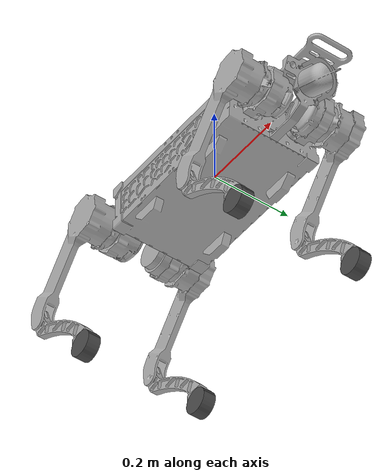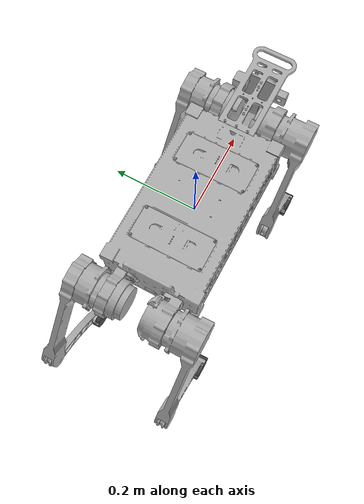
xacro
<?xml version="1.0" encoding="utf-8"?>
<robot name="ayg" xmlns:xacro="http://www.ros.org/wiki/xacro">

  <xacro:arg name="sim" default="False" />
  <xacro:property name="sim" default="$(arg sim)" />

  <xacro:arg name="sim_backend" default="gazebo" />
  <xacro:property name="sim_backend" value="$(arg sim_backend)" />

  <!-- The LiDAR's sensor frame (lidar_link) on the front head; the head itself
       is always present. -->
  <xacro:arg name="lidar" default="True" />
  <xacro:property name="lidar" default="$(arg lidar)" />

  <!-- Payload carried on Base, in kg. 0 is the bare robot; set it in
       simulation to test a policy under load. -->
  <xacro:arg name="payload_mass" default="0.0" />

  <xacro:arg name="initial_configuration" default="lying_down" />
  <xacro:property name="initial_configuration" value="$(arg initial_configuration)" />

  <xacro:arg name="use_csp" default="false" />

  <xacro:arg name="default_kp" default="40.0" />
  <xacro:arg name="default_kd" default="1.0" />

  <xacro:property name="effort_lim" value="50.0" />
  <xacro:property name="velocity_lim" value="10.0" />
  <xacro:property name="PI" value="3.1415926535897931" />

  <xacro:if value="${sim}">
    <xacro:include filename="$(find ayg_description)/urdf/sim_ros2_control.xacro" />
  </xacro:if>

  <xacro:unless value="${sim}">
    <xacro:include filename="$(find robstride_hardware)/urdf/robstride_ros2_control.xacro"/>
    <xacro:robstride_ros2_control
      lf_can_interface="can0"
      rf_can_interface="can1"
      lh_can_interface="can2"
      rh_can_interface="can3"
      actuator_type="3"
      default_kp="$(arg default_kp)"
      default_kd="$(arg default_kd)"
      use_csp="$(arg use_csp)"
      calibration_file="$(find robstride_hardware)/calibration/joint_calibration.yaml"
    />
  </xacro:unless>

  <!-- ============================ Base and IMU ============================ -->

  <xacro:property name="base_mass_cad"   value="11.02" />
  <xacro:property name="extra_base_mass" value="1.0" />
  <xacro:property name="payload_mass"    value="$(arg payload_mass)" />
  <xacro:property name="added_base_mass" value="${extra_base_mass + payload_mass}" />
  <xacro:property name="base_mass"       value="${base_mass_cad + added_base_mass}" />
  <xacro:property name="base_box_x"      value="0.423" />
  <xacro:property name="base_box_y"      value="0.239" />
  <xacro:property name="base_box_z"      value="0.150" />

  <link
    name="Base">
    <inertial>
      <origin
        xyz="-0.0005817 -1.9934E-05 -0.0020067"
        rpy="0 0 0" />
      <mass
        value="${base_mass}" />
      <inertia
        ixx="${round(0.035479 + added_base_mass * (base_box_y**2 + base_box_z**2) / 12, 6)}"
        ixy="-3.4801E-06"
        ixz="8.3812E-05"
        iyy="${round(0.032555 + added_base_mass * (base_box_x**2 + base_box_z**2) / 12, 6)}"
        iyz="0.00043953"
        izz="${round(0.055613 + added_base_mass * (base_box_x**2 + base_box_y**2) / 12, 6)}" />
    </inertial>
    <visual>
      <origin
        xyz="0 0 0"
        rpy="0 0 0" />
      <geometry>
        <mesh
          filename="package://ayg_description/meshes/Base.STL" />
      </geometry>
      <material
        name="">
        <color
          rgba="0.69804 0.69804 0.69804 1" />
      </material>
    </visual>
    <collision>
      <origin
        xyz="-0.001 0 -0.013"
        rpy="0 0 0" />
      <geometry>
        <box size="${base_box_x} ${base_box_y} ${base_box_z}" />
      </geometry>
    </collision>
  </link>

  <link
    name="IMU">
    <inertial>
      <origin
        xyz="-0.00099712 0.00015501 -0.00052021"
        rpy="0 0 0" />
      <mass
        value="0.0013495" />
      <inertia
        ixx="4.0133E-08"
        ixy="-6.9859E-14"
        ixz="8.9554E-12"
        iyy="5.9906E-08"
        iyz="-1.4567E-14"
        izz="9.917E-08" />
    </inertial>
  </link>

  <joint
    name="Base_2_IMU"
    type="fixed">
    <origin
      xyz="0 0 -0.02883"
      rpy="0 0 0" />
    <parent
      link="Base" />
    <child
      link="IMU" />
    <axis
      xyz="0 0 0" />
  </joint>

  <xacro:include filename="$(find ayg_description)/urdf/legs.xacro" />

  <xacro:include filename="$(find ayg_description)/urdf/lidar.xacro" />
</robot>

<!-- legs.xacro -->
<robot xmlns:xacro="http://www.ros.org/wiki/xacro">

  <xacro:macro name="ayg_leg" params="side FH sx sy">

    <!-- ============================== Hip ============================== -->
    <link name="${side}${FH}_Hip">
      <inertial>
        <origin xyz="${0.06215*sx} ${-0.0031317*sy} -0.00034351" rpy="0 0 0" />
        <mass value="1.0451" />
        <inertia ixx="0.00069698" ixy="${-1.5149E-06*sx*sy}" ixz="${1.4486E-05*sx}"
                 iyy="0.0012902"  iyz="${-1.5206E-06*sy}"    izz="0.00084229" />
      </inertial>
      <visual>
        <origin xyz="0 0 0" rpy="0 0 0" />
        <geometry>
          <mesh filename="package://ayg_description/meshes/${side}${FH}_Hip.STL" />
        </geometry>
        <material name="">
          <color rgba="0.69804 0.69804 0.69804 1" />
        </material>
      </visual>
      <collision>
        <origin xyz="${0.060*sx} ${0.0393*sy} -0.0045" rpy="${PI/2} 0 0" />
        <geometry>
          <cylinder radius="0.047" length="0.145" />
        </geometry>
      </collision>
    </link>

    <joint name="${side}${FH}_HAA" type="revolute">
      <origin xyz="${0.201*sx} ${0.056*sy} 0" rpy="0 0 0" />
      <parent link="Base" />
      <child link="${side}${FH}_Hip" />
      <axis xyz="1 0 0" />
      <xacro:if value="${side == 'L'}">
        <limit lower="-0.5236" upper="${0.5236 if FH == 'F' else 0.8203}"
               effort="${effort_lim}" velocity="${velocity_lim}" />
      </xacro:if>
      <xacro:unless value="${side == 'L'}">
        <limit lower="${-0.5236 if FH == 'F' else -0.8203}" upper="0.5236"
               effort="${effort_lim}" velocity="${velocity_lim}" />
      </xacro:unless>
    </joint>

    <!-- ============================= Thigh ============================= -->
    <link name="${side}${FH}_Thigh">
      <inertial>
        <origin xyz="-0.024065 ${0.049498*sy} -0.02468" rpy="0 0 0" />
        <mass value="1.6083" />
        <inertia ixx="0.004797"  ixy="${0.00038562*sy}" ixz="-0.0032535"
                 iyy="0.0083583" iyz="${0.00037881*sy}" izz="0.0043329" />
      </inertial>
      <visual>
        <origin xyz="0 0 0" rpy="0 0 0" />
        <geometry>
          <mesh filename="package://ayg_description/meshes/${side}_Thigh.STL" />
        </geometry>
        <material name="">
          <color rgba="0.69804 0.69804 0.69804 1" />
        </material>
      </visual>
      <collision>
        <origin xyz="-0.1121 ${0.0731*sy} -0.1091" rpy="0 -2.4776 0" />
        <geometry>
          <box size="0.052 0.016 0.170" />
        </geometry>
      </collision>
    </link>

    <joint name="${side}${FH}_HFE" type="revolute">
      <origin xyz="${0.065*sx} ${0.0215*sy} 0" rpy="0 0 0" />
      <parent link="${side}${FH}_Hip" />
      <child link="${side}${FH}_Thigh" />
      <axis xyz="0 -1 0" />
      <!-- Export limits negated and swapped for the -y axis:
           front  (-3.1948, 1.8667) -> (-1.8667, 3.1948)
           hind   (-2.4094, 2.6521) -> (-2.6521, 2.4094) -->
      <xacro:if value="${FH == 'F'}">
        <limit lower="-1.8667" upper="3.1948" effort="${effort_lim}" velocity="${velocity_lim}" />
      </xacro:if>
      <xacro:unless value="${FH == 'F'}">
        <limit lower="-2.6521" upper="2.4094" effort="${effort_lim}" velocity="${velocity_lim}" />
      </xacro:unless>
    </joint>

    <!-- ============================= Shank ============================= -->
    <link name="${side}${FH}_Shank">
      <inertial>
        <origin xyz="0.079065 ${0.015593*sy} -0.077092" rpy="0 0 0" />
        <mass value="0.28461" />
        <inertia ixx="0.0013467" ixy="3.9114E-12" ixz="0.0012546"
                 iyy="0.0026227" iyz="-1.247E-11" izz="0.0012937" />
      </inertial>
      <visual>
        <origin xyz="0 ${0.015582*(sy-1)} 0" rpy="0 0 0" />
        <geometry>
          <mesh filename="package://ayg_description/meshes/Shank.STL" />
        </geometry>
        <material name="">
          <color rgba="0.69804 0.69804 0.69804 1" />
        </material>
      </visual>
      <collision>
        <origin xyz="0.0897 ${0.015582*sy} -0.0938" rpy="0 2.4146 0" />
        <geometry>
          <box size="0.040 0.017 0.180" />
        </geometry>
      </collision>
      <collision>
        <origin xyz="0 ${0.015582*sy} 0" rpy="${PI/2} 0 0" />
        <geometry>
          <cylinder radius="0.030" length="0.019" />
        </geometry>
      </collision>
    </link>

    <joint name="${side}${FH}_KFE" type="revolute">
      <origin xyz="-0.15715 ${0.057518*sy} -0.20082" rpy="0 0 0" />
      <parent link="${side}${FH}_Thigh" />
      <child link="${side}${FH}_Shank" />
      <axis xyz="0 -1 0" />
      <!-- Export (-1.4085, 0.56374) negated and swapped for the -y axis. -->
      <limit lower="-0.56374" upper="1.4085" effort="${effort_lim}" velocity="${velocity_lim}" />
    </joint>

    <!-- ============================== Foot ============================= -->
    <link name="${side}${FH}_Foot">
      <inertial>
        <origin xyz="0 0 0" rpy="0 0 0" />
        <mass value="0.05447" />
        <inertia ixx="1.8306E-05" ixy="0" ixz="0"
                 iyy="2.7889E-05" iyz="0" izz="1.8306E-05" />
      </inertial>
      <visual>
        <origin xyz="0 0 0" rpy="${PI/2} 0 0" />
        <geometry>
          <cylinder radius="0.032" length="0.031" />
        </geometry>
        <material name="">
          <color rgba="0.29804 0.29804 0.29804 1" />
        </material>
      </visual>
      <collision>
        <origin xyz="0 0 0" rpy="0 0 0" />
        <geometry>
          <sphere radius="0.032" />
        </geometry>
      </collision>
    </link>

    <joint name="${side}${FH}_Shank_2_Foot" type="fixed">
      <origin xyz="0.17048 ${0.015582*sy} -0.19164" rpy="0 0 0" />
      <parent link="${side}${FH}_Shank" />
      <child link="${side}${FH}_Foot" />
      <axis xyz="0 0 0" />
    </joint>

  </xacro:macro>

  <xacro:ayg_leg side="L" FH="F" sx="1"  sy="1"  />
  <xacro:ayg_leg side="R" FH="F" sx="1"  sy="-1" />
  <xacro:ayg_leg side="L" FH="H" sx="-1" sy="1"  />
  <xacro:ayg_leg side="R" FH="H" sx="-1" sy="-1" />
</robot>

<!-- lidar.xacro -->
<robot xmlns:xacro="http://www.ros.org/wiki/xacro">

  <xacro:property name="M_PI" value="3.1415926535897931"/>

  <xacro:property name="lidar_pitch" value="${atan2(5.0, 12.0)}"/>
  <xacro:property name="lidar_face_along" value="0.108"/>
  <xacro:property name="lidar_origin_up" value="0.04784"/>
  <xacro:property name="lidar_along" value="${lidar_face_along + lidar_origin_up}"/>
  <xacro:property name="lidar_origin_x" value="${lidar_along * cos(lidar_pitch)}"/>
  <xacro:property name="lidar_origin_y" value="0.0"/>
  <xacro:property name="lidar_origin_z" value="${-lidar_along * sin(lidar_pitch)}"/>

  <xacro:property name="lidar_roll" value="${-(M_PI/2 + lidar_pitch)}"/>
  <xacro:property name="lidar_yaw" value="${-M_PI/2}"/>

  <xacro:property name="lidar_col_s0" value="0.132"/>
  <xacro:property name="lidar_col_s1" value="0.235"/>
  <xacro:property name="lidar_col_r" value="0.033"/>
  <xacro:property name="lidar_col_mid" value="${(lidar_col_s0 + lidar_col_s1)/2}"/>

  <xacro:macro name="massless_frame" params="name">
    <link name="${name}">
      <inertial>
        <origin xyz="0 0 0" rpy="0 0 0"/>
        <mass value="1e-6"/>
        <inertia ixx="1e-9" ixy="0" ixz="0" iyy="1e-9" iyz="0" izz="1e-9"/>
      </inertial>
    </link>
  </xacro:macro>

  <!-- ============================== Head ============================== -->
  <link name="Head">
    <inertial>
      <origin xyz="0.13017 -9.7488E-06 -0.025308" rpy="0 0 0"/>
      <mass value="0.81801"/>
      <inertia ixx="0.00052732" ixy="-3.3579E-08" ixz="-3.8961E-05"
               iyy="0.0012906"  iyz="-4.1369E-08" izz="0.0015175"/>
    </inertial>
    <visual>
      <origin xyz="0 0 0" rpy="0 0 0"/>
      <geometry>
        <mesh filename="package://ayg_description/meshes/Head.STL"/>
      </geometry>
      <material name="">
        <color rgba="0.69804 0.69804 0.69804 1"/>
      </material>
    </visual>
    <collision>
      <origin xyz="0.113 0 0.008" rpy="0 0 0"/>
      <geometry>
        <box size="0.226 0.090 0.008"/>
      </geometry>
    </collision>
    <collision>
      <origin xyz="${lidar_col_mid * cos(lidar_pitch)} 0 ${-lidar_col_mid * sin(lidar_pitch)}"
              rpy="0 ${M_PI/2 + lidar_pitch} 0"/>
      <geometry>
        <cylinder radius="${lidar_col_r}" length="${lidar_col_s1 - lidar_col_s0}"/>
      </geometry>
    </collision>
  </link>

  <!-- Export Base_2_Head, verbatim. No rotation: the head is a plain rigid
       body and the export places it axis-aligned. -->
  <joint name="Base_2_Head" type="fixed">
    <origin xyz="0.199 0 0.05" rpy="0 0 0"/>
    <parent link="Base"/>
    <child link="Head"/>
    <axis xyz="0 0 0"/>
  </joint>

  <!-- ============================ lidar_link =========================== -->
  <!-- Everything below is the sensor, gated on the `lidar` arg; the Head above is
       structural and always present. -->
  <xacro:if value="${lidar}">

  <!-- The frame ayg_lidar stamps /lidar/points_raw and /lidar/imu in; the
       production stack gets Base -> lidar_link from this URDF. -->
  <xacro:massless_frame name="lidar_link"/>
  <joint name="Head_2_lidar" type="fixed">
    <origin xyz="${lidar_origin_x} ${lidar_origin_y} ${lidar_origin_z}"
            rpy="${lidar_roll} 0 ${lidar_yaw}"/>
    <parent link="Head"/>
    <child link="lidar_link"/>
    <axis xyz="0 0 0"/>
  </joint>

  <!-- ========================= Gazebo sensor ========================== -->
  <xacro:if value="${sim}">
    <gazebo reference="lidar_link">
      <sensor name="jt128" type="gpu_lidar">
        <update_rate>20</update_rate>
        <topic>lidar</topic>
        <gz_frame_id>lidar_link</gz_frame_id>
        <lidar>
          <scan>
            <horizontal>
              <samples>450</samples>
              <resolution>1</resolution>
              <min_angle>${-M_PI}</min_angle>
              <max_angle>${M_PI}</max_angle>
            </horizontal>
            <vertical>
              <samples>128</samples>
              <resolution>1</resolution>
              <min_angle>${-3.95 * M_PI / 180.0}</min_angle>
              <max_angle>${89.10 * M_PI / 180.0}</max_angle>
            </vertical>
          </scan>
          <range>
            <min>0.1</min>
            <max>60.0</max>
            <resolution>0.01</resolution>
          </range>
        </lidar>
        <always_on>1</always_on>
        <visualize>false</visualize>
      </sensor>
    </gazebo>

    <gazebo reference="lidar_link">
      <sensor name="jt128_imu" type="imu">
        <always_on>1</always_on>
        <update_rate>200</update_rate>
        <topic>lidar/imu</topic>
        <gz_frame_id>lidar_link</gz_frame_id>
        <imu>
          <angular_velocity>
            <x><noise type="gaussian"><mean>0.0</mean><stddev>0.02</stddev></noise></x>
            <y><noise type="gaussian"><mean>0.0</mean><stddev>0.02</stddev></noise></y>
            <z><noise type="gaussian"><mean>0.0</mean><stddev>0.02</stddev></noise></z>
          </angular_velocity>
          <linear_acceleration>
            <x><noise type="gaussian"><mean>0.0</mean><stddev>0.05</stddev></noise></x>
            <y><noise type="gaussian"><mean>0.0</mean><stddev>0.05</stddev></noise></y>
            <z><noise type="gaussian"><mean>0.0</mean><stddev>0.05</stddev></noise></z>
          </linear_acceleration>
        </imu>
      </sensor>
    </gazebo>
  </xacro:if>

  </xacro:if>

</robot>
